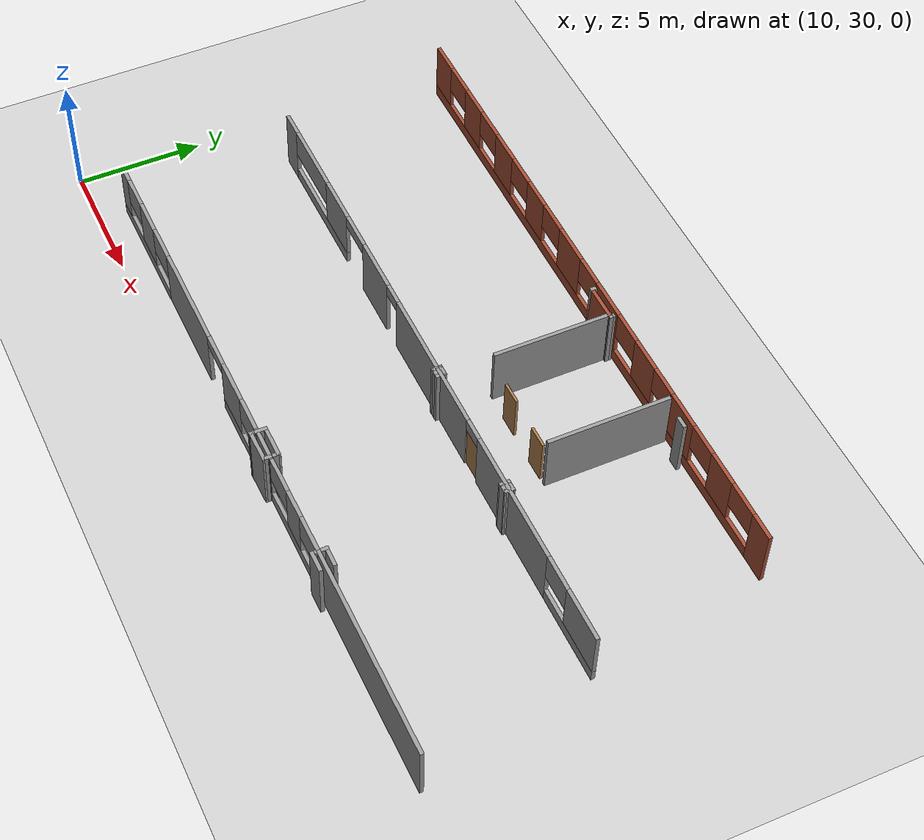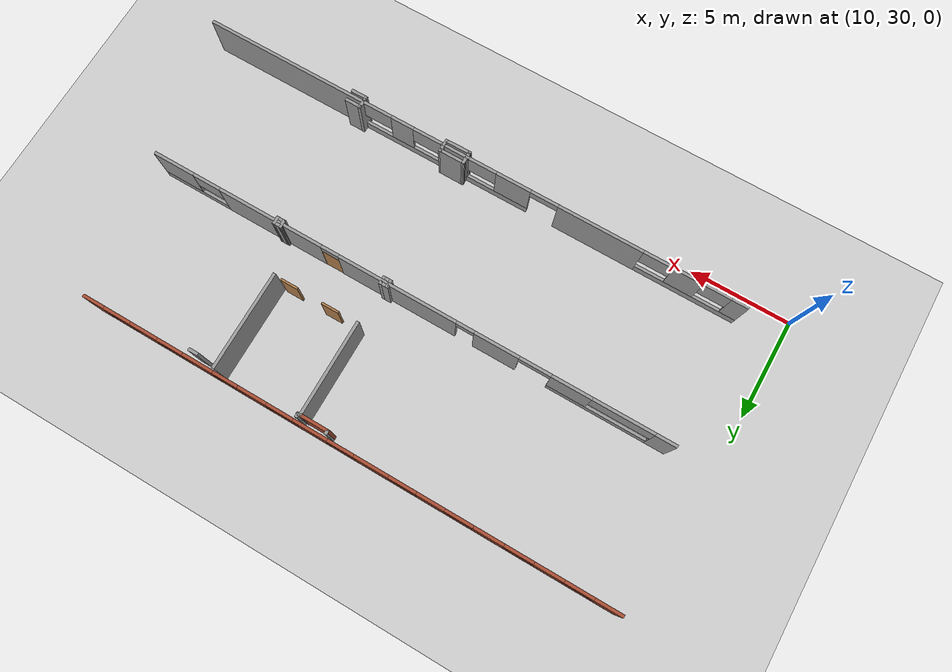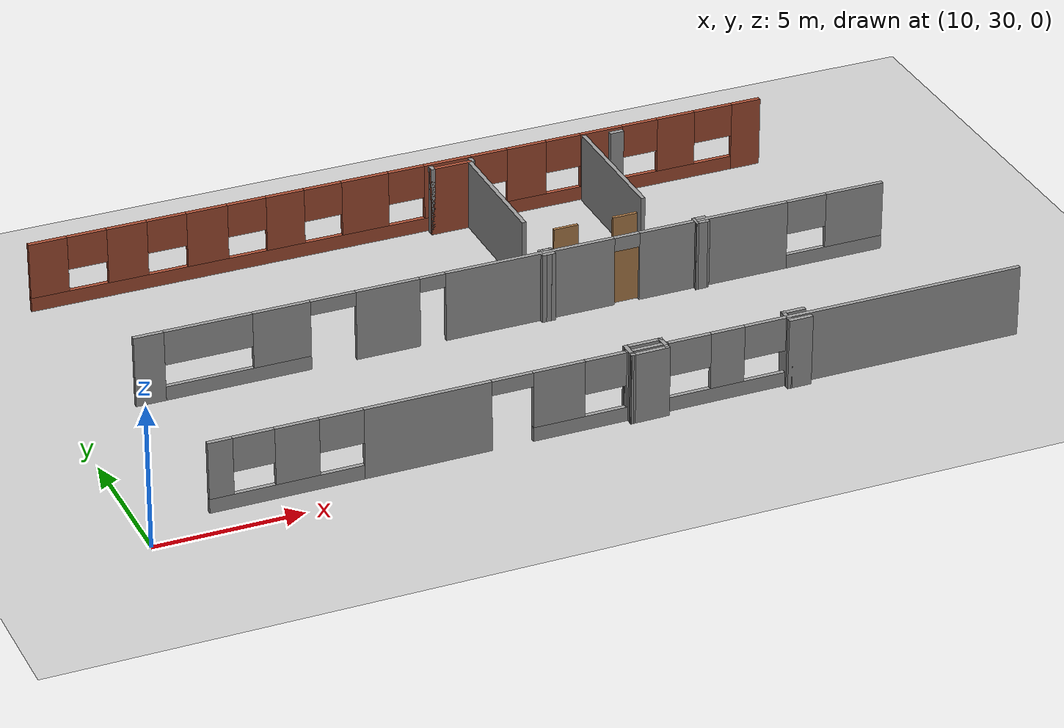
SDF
<sdf version="1.6">
 <world name="default">
  <model name="ground_plane">
   <static>1</static>
   <link name="link">
    <collision name="collision">
     <geometry><plane><normal>0 0 1</normal><size>100 100</size></plane></geometry>
     <surface><friction><ode><mu>100</mu><mu2>50</mu2></ode></friction></surface>
    </collision>
    <visual name="visual">
     <cast_shadows>0</cast_shadows>
     <geometry><plane><normal>0 0 1</normal><size>100 100</size></plane></geometry>
     <material>
      <script><uri>file://media/materials/scripts/gazebo.material</uri><name>Gazebo/Grey</name></script>
     </material>
    </visual>
   </link>
  </model>
  <model name="CVSSP">
   <pose>23.8714 24.094 0 0 -0 0</pose>
   <link name="Wall_0">
    <pose>1.68767 14.035 0 0 -0 0</pose>
    <visual name="Wall_0_Visual_0">
     <pose>-12.7386 0 1.25 0 -0 0</pose>
     <geometry><box><size>1.02282 0.15 2.5</size></box></geometry>
     <material>
      <script><uri>file://media/materials/scripts/gazebo.material</uri><name>Gazebo/Grey</name></script>
      <ambient>0.588235 0.588235 0.588235 1</ambient>
     </material>
    </visual>
    <collision name="Wall_0_Collision_0">
     <geometry><box><size>1.02282 0.15 2.5</size></box></geometry>
     <pose>-12.7386 0 1.25 0 -0 0</pose>
    </collision>
    <visual name="Wall_0_Visual_1">
     <pose>-4.58044 0 1.25 0 -0 0</pose>
     <geometry><box><size>2.22198 0.15 2.5</size></box></geometry>
     <material>
      <script><uri>file://media/materials/scripts/gazebo.material</uri><name>Gazebo/Grey</name></script>
      <ambient>0.588235 0.588235 0.588235 1</ambient>
     </material>
    </visual>
    <collision name="Wall_0_Collision_1">
     <geometry><box><size>2.22198 0.15 2.5</size></box></geometry>
     <pose>-4.58044 0 1.25 0 -0 0</pose>
    </collision>
    <visual name="Wall_0_Visual_2">
     <pose>0.426093 0 1.25 0 -0 0</pose>
     <geometry><box><size>5.99108 0.15 2.5</size></box></geometry>
     <material>
      <script><uri>file://media/materials/scripts/gazebo.material</uri><name>Gazebo/Grey</name></script>
      <ambient>0.588235 0.588235 0.588235 1</ambient>
     </material>
    </visual>
    <collision name="Wall_0_Collision_2">
     <geometry><box><size>5.99108 0.15 2.5</size></box></geometry>
     <pose>0.426093 0 1.25 0 -0 0</pose>
    </collision>
    <visual name="Wall_0_Visual_3">
     <pose>7.01875 0 1.25 0 -0 0</pose>
     <geometry><box><size>5.39422 0.15 2.5</size></box></geometry>
     <material>
      <script><uri>file://media/materials/scripts/gazebo.material</uri><name>Gazebo/Grey</name></script>
      <ambient>0.588235 0.588235 0.588235 1</ambient>
     </material>
    </visual>
    <collision name="Wall_0_Collision_3">
     <geometry><box><size>5.39422 0.15 2.5</size></box></geometry>
     <pose>7.01875 0 1.25 0 -0 0</pose>
    </collision>
    <visual name="Wall_0_Visual_4">
     <pose>-9.74161 0 0.25 0 -0 0</pose>
     <geometry><box><size>4.97113 0.15 0.5</size></box></geometry>
     <material>
      <script><uri>file://media/materials/scripts/gazebo.material</uri><name>Gazebo/Grey</name></script>
      <ambient>0.588235 0.588235 0.588235 1</ambient>
     </material>
    </visual>
    <collision name="Wall_0_Collision_4">
     <geometry><box><size>4.97113 0.15 0.5</size></box></geometry>
     <pose>-9.74161 0 0.25 0 -0 0</pose>
    </collision>
    <visual name="Wall_0_Visual_5">
     <pose>11.4829 0 0.25 0 -0 0</pose>
     <geometry><box><size>3.53415 0.15 0.5</size></box></geometry>
     <material>
      <script><uri>file://media/materials/scripts/gazebo.material</uri><name>Gazebo/Grey</name></script>
      <ambient>0.588235 0.588235 0.588235 1</ambient>
     </material>
    </visual>
    <collision name="Wall_0_Collision_5">
     <geometry><box><size>3.53415 0.15 0.5</size></box></geometry>
     <pose>11.4829 0 0.25 0 -0 0</pose>
    </collision>
    <visual name="Wall_0_Visual_6">
     <pose>-8.24385 0 1.5 0 -0 0</pose>
     <geometry><box><size>1.9756 0.15 2</size></box></geometry>
     <material>
      <script><uri>file://media/materials/scripts/gazebo.material</uri><name>Gazebo/Grey</name></script>
      <ambient>0.588235 0.588235 0.588235 1</ambient>
     </material>
    </visual>
    <collision name="Wall_0_Collision_6">
     <geometry><box><size>1.9756 0.15 2</size></box></geometry>
     <pose>-8.24385 0 1.5 0 -0 0</pose>
    </collision>
    <visual name="Wall_0_Visual_7">
     <pose>-8.24385 0 1.5 0 -0 0</pose>
     <geometry><box><size>1.9756 0.15 2</size></box></geometry>
     <material>
      <script><uri>file://media/materials/scripts/gazebo.material</uri><name>Gazebo/Grey</name></script>
      <ambient>0.588235 0.588235 0.588235 1</ambient>
     </material>
    </visual>
    <collision name="Wall_0_Collision_7">
     <geometry><box><size>1.9756 0.15 2</size></box></geometry>
     <pose>-8.24385 0 1.5 0 -0 0</pose>
    </collision>
    <visual name="Wall_0_Visual_8">
     <pose>12.1924 0 1.5 0 -0 0</pose>
     <geometry><box><size>2.11511 0.15 2</size></box></geometry>
     <material>
      <script><uri>file://media/materials/scripts/gazebo.material</uri><name>Gazebo/Grey</name></script>
      <ambient>0.588235 0.588235 0.588235 1</ambient>
     </material>
    </visual>
    <collision name="Wall_0_Collision_8">
     <geometry><box><size>2.11511 0.15 2</size></box></geometry>
     <pose>12.1924 0 1.5 0 -0 0</pose>
    </collision>
    <visual name="Wall_0_Visual_9">
     <pose>-10.7294 0 1.9 0 -0 0</pose>
     <geometry><box><size>2.99553 0.15 1.2</size></box></geometry>
     <material>
      <script><uri>file://media/materials/scripts/gazebo.material</uri><name>Gazebo/Grey</name></script>
      <ambient>0.588235 0.588235 0.588235 1</ambient>
     </material>
    </visual>
    <collision name="Wall_0_Collision_9">
     <geometry><box><size>2.99553 0.15 1.2</size></box></geometry>
     <pose>-10.7294 0 1.9 0 -0 0</pose>
    </collision>
    <visual name="Wall_0_Visual_10">
     <pose>10.4254 0 1.9 0 -0 0</pose>
     <geometry><box><size>1.41904 0.15 1.2</size></box></geometry>
     <material>
      <script><uri>file://media/materials/scripts/gazebo.material</uri><name>Gazebo/Grey</name></script>
      <ambient>0.588235 0.588235 0.588235 1</ambient>
     </material>
    </visual>
    <collision name="Wall_0_Collision_10">
     <geometry><box><size>1.41904 0.15 1.2</size></box></geometry>
     <pose>10.4254 0 1.9 0 -0 0</pose>
    </collision>
    <visual name="Wall_0_Visual_11">
     <pose>-3.01945 0 2.25 0 -0 0</pose>
     <geometry><box><size>0.9 0.15 0.5</size></box></geometry>
     <material>
      <script><uri>file://media/materials/scripts/gazebo.material</uri><name>Gazebo/Grey</name></script>
      <ambient>0.588235 0.588235 0.588235 1</ambient>
     </material>
    </visual>
    <collision name="Wall_0_Collision_11">
     <geometry><box><size>0.9 0.15 0.5</size></box></geometry>
     <pose>-3.01945 0 2.25 0 -0 0</pose>
    </collision>
    <visual name="Wall_0_Visual_12">
     <pose>3.87163 0 2.25 0 -0 0</pose>
     <geometry><box><size>0.9 0.15 0.5</size></box></geometry>
     <material>
      <script><uri>file://media/materials/scripts/gazebo.material</uri><name>Gazebo/Grey</name></script>
      <ambient>0.588235 0.588235 0.588235 1</ambient>
     </material>
    </visual>
    <collision name="Wall_0_Collision_12">
     <geometry><box><size>0.9 0.15 0.5</size></box></geometry>
     <pose>3.87163 0 2.25 0 -0 0</pose>
    </collision>
    <visual name="Wall_0_Visual_13">
     <pose>-6.47374 0 2.25 0 -0 0</pose>
     <geometry><box><size>1.56462 0.15 0.5</size></box></geometry>
     <material>
      <script><uri>file://media/materials/scripts/gazebo.material</uri><name>Gazebo/Grey</name></script>
      <ambient>0.588235 0.588235 0.588235 1</ambient>
     </material>
    </visual>
    <collision name="Wall_0_Collision_13">
     <geometry><box><size>1.56462 0.15 0.5</size></box></geometry>
     <pose>-6.47374 0 2.25 0 -0 0</pose>
    </collision>
    <visual name="Wall_0_Visual_14">
     <pose>-6.47374 0 2.25 0 -0 0</pose>
     <geometry><box><size>1.56462 0.15 0.5</size></box></geometry>
     <material>
      <script><uri>file://media/materials/scripts/gazebo.material</uri><name>Gazebo/Grey</name></script>
      <ambient>0.588235 0.588235 0.588235 1</ambient>
     </material>
    </visual>
    <collision name="Wall_0_Collision_14">
     <geometry><box><size>1.56462 0.15 0.5</size></box></geometry>
     <pose>-6.47374 0 2.25 0 -0 0</pose>
    </collision>
   </link>
   <link name="Wall_19">
    <pose>2.41083 7.10891 0 0 -0 3.14159</pose>
    <visual name="Wall_19_Visual_0">
     <pose>-9.80896 0 1.25 0 -0 0</pose>
     <geometry><box><size>8.38208 0.15 2.5</size></box></geometry>
     <material>
      <script><uri>file://media/materials/scripts/gazebo.material</uri><name>Gazebo/Grey</name></script>
      <ambient>0.588235 0.588235 0.588235 1</ambient>
     </material>
    </visual>
    <collision name="Wall_19_Collision_0">
     <geometry><box><size>8.38208 0.15 2.5</size></box></geometry>
     <pose>-9.80896 0 1.25 0 -0 0</pose>
    </collision>
    <visual name="Wall_19_Visual_1">
     <pose>6.72902 0 1.25 0 -0 0</pose>
     <geometry><box><size>4.28675 0.15 2.5</size></box></geometry>
     <material>
      <script><uri>file://media/materials/scripts/gazebo.material</uri><name>Gazebo/Grey</name></script>
      <ambient>0.588235 0.588235 0.588235 1</ambient>
     </material>
    </visual>
    <collision name="Wall_19_Collision_1">
     <geometry><box><size>4.28675 0.15 2.5</size></box></geometry>
     <pose>6.72902 0 1.25 0 -0 0</pose>
    </collision>
    <visual name="Wall_19_Visual_2">
     <pose>-1.21771 0 0.25 0 -0 0</pose>
     <geometry><box><size>8.80043 0.15 0.5</size></box></geometry>
     <material>
      <script><uri>file://media/materials/scripts/gazebo.material</uri><name>Gazebo/Grey</name></script>
      <ambient>0.588235 0.588235 0.588235 1</ambient>
     </material>
    </visual>
    <collision name="Wall_19_Collision_2">
     <geometry><box><size>8.80043 0.15 0.5</size></box></geometry>
     <pose>-1.21771 0 0.25 0 -0 0</pose>
    </collision>
    <visual name="Wall_19_Visual_3">
     <pose>11.4362 0 0.25 0 -0 0</pose>
     <geometry><box><size>5.1276 0.15 0.5</size></box></geometry>
     <material>
      <script><uri>file://media/materials/scripts/gazebo.material</uri><name>Gazebo/Grey</name></script>
      <ambient>0.588235 0.588235 0.588235 1</ambient>
     </material>
    </visual>
    <collision name="Wall_19_Collision_3">
     <geometry><box><size>5.1276 0.15 0.5</size></box></geometry>
     <pose>11.4362 0 0.25 0 -0 0</pose>
    </collision>
    <visual name="Wall_19_Visual_4">
     <pose>-3.53944 0 1.5 0 -0 0</pose>
     <geometry><box><size>1.17771 0.15 2</size></box></geometry>
     <material>
      <script><uri>file://media/materials/scripts/gazebo.material</uri><name>Gazebo/Grey</name></script>
      <ambient>0.588235 0.588235 0.588235 1</ambient>
     </material>
    </visual>
    <collision name="Wall_19_Collision_4">
     <geometry><box><size>1.17771 0.15 2</size></box></geometry>
     <pose>-3.53944 0 1.5 0 -0 0</pose>
    </collision>
    <visual name="Wall_19_Visual_5">
     <pose>-0.741003 0 1.5 0 -0 0</pose>
     <geometry><box><size>1.46268 0.15 2</size></box></geometry>
     <material>
      <script><uri>file://media/materials/scripts/gazebo.material</uri><name>Gazebo/Grey</name></script>
      <ambient>0.588235 0.588235 0.588235 1</ambient>
     </material>
    </visual>
    <collision name="Wall_19_Collision_5">
     <geometry><box><size>1.46268 0.15 2</size></box></geometry>
     <pose>-0.741003 0 1.5 0 -0 0</pose>
    </collision>
    <visual name="Wall_19_Visual_6">
     <pose>2.29704 0 1.5 0 -0 0</pose>
     <geometry><box><size>1.77092 0.15 2</size></box></geometry>
     <material>
      <script><uri>file://media/materials/scripts/gazebo.material</uri><name>Gazebo/Grey</name></script>
      <ambient>0.588235 0.588235 0.588235 1</ambient>
     </material>
    </visual>
    <collision name="Wall_19_Collision_6">
     <geometry><box><size>1.77092 0.15 2</size></box></geometry>
     <pose>2.29704 0 1.5 0 -0 0</pose>
    </collision>
    <visual name="Wall_19_Visual_7">
     <pose>2.29704 0 1.5 0 -0 0</pose>
     <geometry><box><size>1.77092 0.15 2</size></box></geometry>
     <material>
      <script><uri>file://media/materials/scripts/gazebo.material</uri><name>Gazebo/Grey</name></script>
      <ambient>0.588235 0.588235 0.588235 1</ambient>
     </material>
    </visual>
    <collision name="Wall_19_Collision_7">
     <geometry><box><size>1.77092 0.15 2</size></box></geometry>
     <pose>2.29704 0 1.5 0 -0 0</pose>
    </collision>
    <visual name="Wall_19_Visual_8">
     <pose>11.0786 0 1.5 0 -0 0</pose>
     <geometry><box><size>1.46509 0.15 2</size></box></geometry>
     <material>
      <script><uri>file://media/materials/scripts/gazebo.material</uri><name>Gazebo/Grey</name></script>
      <ambient>0.588235 0.588235 0.588235 1</ambient>
     </material>
    </visual>
    <collision name="Wall_19_Collision_8">
     <geometry><box><size>1.46509 0.15 2</size></box></geometry>
     <pose>11.0786 0 1.5 0 -0 0</pose>
    </collision>
    <visual name="Wall_19_Visual_9">
     <pose>13.5916 0 1.5 0 -0 0</pose>
     <geometry><box><size>0.816793 0.15 2</size></box></geometry>
     <material>
      <script><uri>file://media/materials/scripts/gazebo.material</uri><name>Gazebo/Grey</name></script>
      <ambient>0.588235 0.588235 0.588235 1</ambient>
     </material>
    </visual>
    <collision name="Wall_19_Collision_9">
     <geometry><box><size>0.816793 0.15 2</size></box></geometry>
     <pose>13.5916 0 1.5 0 -0 0</pose>
    </collision>
    <visual name="Wall_19_Visual_10">
     <pose>-4.87311 0 1.9 0 -0 0</pose>
     <geometry><box><size>1.48963 0.15 1.2</size></box></geometry>
     <material>
      <script><uri>file://media/materials/scripts/gazebo.material</uri><name>Gazebo/Grey</name></script>
      <ambient>0.588235 0.588235 0.588235 1</ambient>
     </material>
    </visual>
    <collision name="Wall_19_Collision_10">
     <geometry><box><size>1.48963 0.15 1.2</size></box></geometry>
     <pose>-4.87311 0 1.9 0 -0 0</pose>
    </collision>
    <visual name="Wall_19_Visual_11">
     <pose>9.60921 0 1.9 0 -0 0</pose>
     <geometry><box><size>1.47362 0.15 1.2</size></box></geometry>
     <material>
      <script><uri>file://media/materials/scripts/gazebo.material</uri><name>Gazebo/Grey</name></script>
      <ambient>0.588235 0.588235 0.588235 1</ambient>
     </material>
    </visual>
    <collision name="Wall_19_Collision_11">
     <geometry><box><size>1.47362 0.15 1.2</size></box></geometry>
     <pose>9.60921 0 1.9 0 -0 0</pose>
    </collision>
    <visual name="Wall_19_Visual_12">
     <pose>-2.21146 0 1.9 0 -0 0</pose>
     <geometry><box><size>1.47823 0.15 1.2</size></box></geometry>
     <material>
      <script><uri>file://media/materials/scripts/gazebo.material</uri><name>Gazebo/Grey</name></script>
      <ambient>0.588235 0.588235 0.588235 1</ambient>
     </material>
    </visual>
    <collision name="Wall_19_Collision_12">
     <geometry><box><size>1.47823 0.15 1.2</size></box></geometry>
     <pose>-2.21146 0 1.9 0 -0 0</pose>
    </collision>
    <visual name="Wall_19_Visual_13">
     <pose>0.700959 0 1.9 0 -0 0</pose>
     <geometry><box><size>1.42124 0.15 1.2</size></box></geometry>
     <material>
      <script><uri>file://media/materials/scripts/gazebo.material</uri><name>Gazebo/Grey</name></script>
      <ambient>0.588235 0.588235 0.588235 1</ambient>
     </material>
    </visual>
    <collision name="Wall_19_Collision_13">
     <geometry><box><size>1.42124 0.15 1.2</size></box></geometry>
     <pose>0.700959 0 1.9 0 -0 0</pose>
    </collision>
    <visual name="Wall_19_Visual_14">
     <pose>12.4972 0 1.9 0 -0 0</pose>
     <geometry><box><size>1.3721 0.15 1.2</size></box></geometry>
     <material>
      <script><uri>file://media/materials/scripts/gazebo.material</uri><name>Gazebo/Grey</name></script>
      <ambient>0.588235 0.588235 0.588235 1</ambient>
     </material>
    </visual>
    <collision name="Wall_19_Collision_14">
     <geometry><box><size>1.3721 0.15 1.2</size></box></geometry>
     <pose>12.4972 0 1.9 0 -0 0</pose>
    </collision>
    <visual name="Wall_19_Visual_15">
     <pose>3.88408 0 2.25 0 -0 0</pose>
     <geometry><box><size>1.40314 0.15 0.5</size></box></geometry>
     <material>
      <script><uri>file://media/materials/scripts/gazebo.material</uri><name>Gazebo/Grey</name></script>
      <ambient>0.588235 0.588235 0.588235 1</ambient>
     </material>
    </visual>
    <collision name="Wall_19_Collision_15">
     <geometry><box><size>1.40314 0.15 0.5</size></box></geometry>
     <pose>3.88408 0 2.25 0 -0 0</pose>
    </collision>
    <visual name="Wall_19_Visual_16">
     <pose>3.88408 0 2.25 0 -0 0</pose>
     <geometry><box><size>1.40314 0.15 0.5</size></box></geometry>
     <material>
      <script><uri>file://media/materials/scripts/gazebo.material</uri><name>Gazebo/Grey</name></script>
      <ambient>0.588235 0.588235 0.588235 1</ambient>
     </material>
    </visual>
    <collision name="Wall_19_Collision_16">
     <geometry><box><size>1.40314 0.15 0.5</size></box></geometry>
     <pose>3.88408 0 2.25 0 -0 0</pose>
    </collision>
   </link>
   <link name="Wall_301">
    <pose>0.541411 21.1476 0 0 -0 3.14159</pose>
    <visual name="Wall_301_Visual_0">
     <pose>-12.7063 0 1.25 0 -0 0</pose>
     <geometry><box><size>1.08735 0.15 2.5</size></box></geometry>
     <material>
      <script><uri>file://media/materials/scripts/gazebo.material</uri><name>Gazebo/Bricks</name></script>
      <ambient>1 1 1 1</ambient>
     </material>
    </visual>
    <collision name="Wall_301_Collision_0">
     <geometry><box><size>1.08735 0.15 2.5</size></box></geometry>
     <pose>-12.7063 0 1.25 0 -0 0</pose>
    </collision>
    <visual name="Wall_301_Visual_1">
     <pose>0.543674 0 0.25 0 -0 0</pose>
     <geometry><box><size>25.4127 0.15 0.5</size></box></geometry>
     <material>
      <script><uri>file://media/materials/scripts/gazebo.material</uri><name>Gazebo/Bricks</name></script>
      <ambient>1 1 1 1</ambient>
     </material>
    </visual>
    <collision name="Wall_301_Collision_1">
     <geometry><box><size>25.4127 0.15 0.5</size></box></geometry>
     <pose>0.543674 0 0.25 0 -0 0</pose>
    </collision>
    <visual name="Wall_301_Visual_2">
     <pose>-10.054 0 1.5 0 -0 0</pose>
     <geometry><box><size>1.40457 0.15 2</size></box></geometry>
     <material>
      <script><uri>file://media/materials/scripts/gazebo.material</uri><name>Gazebo/Bricks</name></script>
      <ambient>1 1 1 1</ambient>
     </material>
    </visual>
    <collision name="Wall_301_Collision_2">
     <geometry><box><size>1.40457 0.15 2</size></box></geometry>
     <pose>-10.054 0 1.5 0 -0 0</pose>
    </collision>
    <visual name="Wall_301_Visual_3">
     <pose>-7.26 0 1.5 0 -0 0</pose>
     <geometry><box><size>1.56325 0.15 2</size></box></geometry>
     <material>
      <script><uri>file://media/materials/scripts/gazebo.material</uri><name>Gazebo/Bricks</name></script>
      <ambient>1 1 1 1</ambient>
     </material>
    </visual>
    <collision name="Wall_301_Collision_3">
     <geometry><box><size>1.56325 0.15 2</size></box></geometry>
     <pose>-7.26 0 1.5 0 -0 0</pose>
    </collision>
    <visual name="Wall_301_Visual_4">
     <pose>-4.48871 0 1.5 0 -0 0</pose>
     <geometry><box><size>1.43857 0.15 2</size></box></geometry>
     <material>
      <script><uri>file://media/materials/scripts/gazebo.material</uri><name>Gazebo/Bricks</name></script>
      <ambient>1 1 1 1</ambient>
     </material>
    </visual>
    <collision name="Wall_301_Collision_4">
     <geometry><box><size>1.43857 0.15 2</size></box></geometry>
     <pose>-4.48871 0 1.5 0 -0 0</pose>
    </collision>
    <visual name="Wall_301_Visual_5">
     <pose>-1.57856 0 1.5 0 -0 0</pose>
     <geometry><box><size>1.70493 0.15 2</size></box></geometry>
     <material>
      <script><uri>file://media/materials/scripts/gazebo.material</uri><name>Gazebo/Bricks</name></script>
      <ambient>1 1 1 1</ambient>
     </material>
    </visual>
    <collision name="Wall_301_Collision_5">
     <geometry><box><size>1.70493 0.15 2</size></box></geometry>
     <pose>-1.57856 0 1.5 0 -0 0</pose>
    </collision>
    <visual name="Wall_301_Visual_6">
     <pose>1.41376 0 1.5 0 -0 0</pose>
     <geometry><box><size>1.68226 0.15 2</size></box></geometry>
     <material>
      <script><uri>file://media/materials/scripts/gazebo.material</uri><name>Gazebo/Bricks</name></script>
      <ambient>1 1 1 1</ambient>
     </material>
    </visual>
    <collision name="Wall_301_Collision_6">
     <geometry><box><size>1.68226 0.15 2</size></box></geometry>
     <pose>1.41376 0 1.5 0 -0 0</pose>
    </collision>
    <visual name="Wall_301_Visual_7">
     <pose>4.28139 0 1.5 0 -0 0</pose>
     <geometry><box><size>1.35356 0.15 2</size></box></geometry>
     <material>
      <script><uri>file://media/materials/scripts/gazebo.material</uri><name>Gazebo/Bricks</name></script>
      <ambient>1 1 1 1</ambient>
     </material>
    </visual>
    <collision name="Wall_301_Collision_7">
     <geometry><box><size>1.35356 0.15 2</size></box></geometry>
     <pose>4.28139 0 1.5 0 -0 0</pose>
    </collision>
    <visual name="Wall_301_Visual_8">
     <pose>7.04557 0 1.5 0 -0 0</pose>
     <geometry><box><size>1.44133 0.15 2</size></box></geometry>
     <material>
      <script><uri>file://media/materials/scripts/gazebo.material</uri><name>Gazebo/Bricks</name></script>
      <ambient>1 1 1 1</ambient>
     </material>
    </visual>
    <collision name="Wall_301_Collision_8">
     <geometry><box><size>1.44133 0.15 2</size></box></geometry>
     <pose>7.04557 0 1.5 0 -0 0</pose>
    </collision>
    <visual name="Wall_301_Visual_9">
     <pose>9.84934 0 1.5 0 -0 0</pose>
     <geometry><box><size>1.39875 0.15 2</size></box></geometry>
     <material>
      <script><uri>file://media/materials/scripts/gazebo.material</uri><name>Gazebo/Bricks</name></script>
      <ambient>1 1 1 1</ambient>
     </material>
    </visual>
    <collision name="Wall_301_Collision_9">
     <geometry><box><size>1.39875 0.15 2</size></box></geometry>
     <pose>9.84934 0 1.5 0 -0 0</pose>
    </collision>
    <visual name="Wall_301_Visual_10">
     <pose>12.5827 0 1.5 0 -0 0</pose>
     <geometry><box><size>1.33456 0.15 2</size></box></geometry>
     <material>
      <script><uri>file://media/materials/scripts/gazebo.material</uri><name>Gazebo/Bricks</name></script>
      <ambient>1 1 1 1</ambient>
     </material>
    </visual>
    <collision name="Wall_301_Collision_10">
     <geometry><box><size>1.33456 0.15 2</size></box></geometry>
     <pose>12.5827 0 1.5 0 -0 0</pose>
    </collision>
    <visual name="Wall_301_Visual_11">
     <pose>-11.4595 0 1.9 0 -0 0</pose>
     <geometry><box><size>1.4064 0.15 1.2</size></box></geometry>
     <material>
      <script><uri>file://media/materials/scripts/gazebo.material</uri><name>Gazebo/Bricks</name></script>
      <ambient>1 1 1 1</ambient>
     </material>
    </visual>
    <collision name="Wall_301_Collision_11">
     <geometry><box><size>1.4064 0.15 1.2</size></box></geometry>
     <pose>-11.4595 0 1.9 0 -0 0</pose>
    </collision>
    <visual name="Wall_301_Visual_12">
     <pose>-8.69666 0 1.9 0 -0 0</pose>
     <geometry><box><size>1.31005 0.15 1.2</size></box></geometry>
     <material>
      <script><uri>file://media/materials/scripts/gazebo.material</uri><name>Gazebo/Bricks</name></script>
      <ambient>1 1 1 1</ambient>
     </material>
    </visual>
    <collision name="Wall_301_Collision_12">
     <geometry><box><size>1.31005 0.15 1.2</size></box></geometry>
     <pose>-8.69666 0 1.9 0 -0 0</pose>
    </collision>
    <visual name="Wall_301_Visual_13">
     <pose>-5.84319 0 1.9 0 -0 0</pose>
     <geometry><box><size>1.27038 0.15 1.2</size></box></geometry>
     <material>
      <script><uri>file://media/materials/scripts/gazebo.material</uri><name>Gazebo/Bricks</name></script>
      <ambient>1 1 1 1</ambient>
     </material>
    </visual>
    <collision name="Wall_301_Collision_13">
     <geometry><box><size>1.27038 0.15 1.2</size></box></geometry>
     <pose>-5.84319 0 1.9 0 -0 0</pose>
    </collision>
    <visual name="Wall_301_Visual_14">
     <pose>-3.10023 0 1.9 0 -0 0</pose>
     <geometry><box><size>1.33839 0.15 1.2</size></box></geometry>
     <material>
      <script><uri>file://media/materials/scripts/gazebo.material</uri><name>Gazebo/Bricks</name></script>
      <ambient>1 1 1 1</ambient>
     </material>
    </visual>
    <collision name="Wall_301_Collision_14">
     <geometry><box><size>1.33839 0.15 1.2</size></box></geometry>
     <pose>-3.10023 0 1.9 0 -0 0</pose>
    </collision>
    <visual name="Wall_301_Visual_15">
     <pose>-0.076737 0 1.9 0 -0 0</pose>
     <geometry><box><size>1.29872 0.15 1.2</size></box></geometry>
     <material>
      <script><uri>file://media/materials/scripts/gazebo.material</uri><name>Gazebo/Bricks</name></script>
      <ambient>1 1 1 1</ambient>
     </material>
    </visual>
    <collision name="Wall_301_Collision_15">
     <geometry><box><size>1.29872 0.15 1.2</size></box></geometry>
     <pose>-0.076737 0 1.9 0 -0 0</pose>
    </collision>
    <visual name="Wall_301_Visual_16">
     <pose>2.92975 0 1.9 0 -0 0</pose>
     <geometry><box><size>1.34973 0.15 1.2</size></box></geometry>
     <material>
      <script><uri>file://media/materials/scripts/gazebo.material</uri><name>Gazebo/Bricks</name></script>
      <ambient>1 1 1 1</ambient>
     </material>
    </visual>
    <collision name="Wall_301_Collision_16">
     <geometry><box><size>1.34973 0.15 1.2</size></box></geometry>
     <pose>2.92975 0 1.9 0 -0 0</pose>
    </collision>
    <visual name="Wall_301_Visual_17">
     <pose>5.64154 0 1.9 0 -0 0</pose>
     <geometry><box><size>1.36673 0.15 1.2</size></box></geometry>
     <material>
      <script><uri>file://media/materials/scripts/gazebo.material</uri><name>Gazebo/Bricks</name></script>
      <ambient>1 1 1 1</ambient>
     </material>
    </visual>
    <collision name="Wall_301_Collision_17">
     <geometry><box><size>1.36673 0.15 1.2</size></box></geometry>
     <pose>5.64154 0 1.9 0 -0 0</pose>
    </collision>
    <visual name="Wall_301_Visual_18">
     <pose>8.4581 0 1.9 0 -0 0</pose>
     <geometry><box><size>1.38373 0.15 1.2</size></box></geometry>
     <material>
      <script><uri>file://media/materials/scripts/gazebo.material</uri><name>Gazebo/Bricks</name></script>
      <ambient>1 1 1 1</ambient>
     </material>
    </visual>
    <collision name="Wall_301_Collision_18">
     <geometry><box><size>1.38373 0.15 1.2</size></box></geometry>
     <pose>8.4581 0 1.9 0 -0 0</pose>
    </collision>
    <visual name="Wall_301_Visual_19">
     <pose>11.2321 0 1.9 0 -0 0</pose>
     <geometry><box><size>1.36673 0.15 1.2</size></box></geometry>
     <material>
      <script><uri>file://media/materials/scripts/gazebo.material</uri><name>Gazebo/Bricks</name></script>
      <ambient>1 1 1 1</ambient>
     </material>
    </visual>
    <collision name="Wall_301_Collision_19">
     <geometry><box><size>1.36673 0.15 1.2</size></box></geometry>
     <pose>11.2321 0 1.9 0 -0 0</pose>
    </collision>
   </link>
   <link name="Wall_32">
    <collision name="Wall_32_Collision">
     <geometry><box><size>0.5 0.15 2.5</size></box></geometry>
     <pose>0 0 1.25 0 -0 0</pose>
    </collision>
    <visual name="Wall_32_Visual">
     <pose>0 0 1.25 0 -0 0</pose>
     <geometry><box><size>0.5 0.15 2.5</size></box></geometry>
     <material>
      <script><uri>file://media/materials/scripts/gazebo.material</uri><name>Gazebo/Grey</name></script>
      <ambient>1 1 1 1</ambient>
     </material>
    </visual>
    <pose>2.55582 7.23766 0 0 -0 1.5708</pose>
   </link>
   <link name="Wall_322">
    <collision name="Wall_322_Collision">
     <geometry><box><size>4.75 0.15 2.5</size></box></geometry>
     <pose>0 0 1.25 0 -0 0</pose>
    </collision>
    <visual name="Wall_322_Visual">
     <pose>0 0 1.25 0 -0 0</pose>
     <geometry><box><size>4.75 0.15 2.5</size></box></geometry>
     <material>
      <script><uri>file://media/materials/scripts/gazebo.material</uri><name>Gazebo/Grey</name></script>
      <ambient>0.588235 0.588235 0.588235 1</ambient>
     </material>
    </visual>
    <pose>2.8067 18.5154 0 0 -0 1.5708</pose>
   </link>
   <link name="Wall_323">
    <collision name="Wall_323_Collision">
     <geometry><box><size>1.5 0.15 2.5</size></box></geometry>
     <pose>0 0 1.25 0 -0 0</pose>
    </collision>
    <visual name="Wall_323_Visual">
     <pose>0 0 1.25 0 -0 0</pose>
     <geometry><box><size>1.5 0.15 2.5</size></box></geometry>
     <material>
      <script><uri>file://media/materials/scripts/gazebo.material</uri><name>Gazebo/Bricks</name></script>
      <ambient>1 1 1 1</ambient>
     </material>
    </visual>
    <pose>2.1317 20.8154 0 0 -0 3.14159</pose>
   </link>
   <link name="Wall_324">
    <collision name="Wall_324_Collision">
     <geometry><box><size>0.25 0.15 2.5</size></box></geometry>
     <pose>0 0 1.25 0 -0 0</pose>
    </collision>
    <visual name="Wall_324_Visual">
     <pose>0 0 1.25 0 -0 0</pose>
     <geometry><box><size>0.25 0.15 2.5</size></box></geometry>
     <material>
      <script><uri>file://media/materials/scripts/gazebo.material</uri><name>Gazebo/Grey</name></script>
      <ambient>1 1 1 1</ambient>
     </material>
    </visual>
    <pose>1.4567 20.8654 0 0 -0 1.5708</pose>
   </link>
   <link name="Wall_33">
    <collision name="Wall_33_Collision">
     <geometry><box><size>1.35002 0.15 2.5</size></box></geometry>
     <pose>0 0 1.25 0 -0 0</pose>
    </collision>
    <visual name="Wall_33_Visual">
     <pose>0 0 1.25 0 -0 0</pose>
     <geometry><box><size>1.35002 0.15 2.5</size></box></geometry>
     <material>
      <script><uri>file://media/materials/scripts/gazebo.material</uri><name>Gazebo/Grey</name></script>
      <ambient>1 1 1 1</ambient>
     </material>
    </visual>
    <pose>3.15583 7.41134 0 0 0 -0.002197</pose>
   </link>
   <link name="Wall_332">
    <collision name="Wall_332_Collision">
     <geometry><box><size>0.280384 0.15 2.5</size></box></geometry>
     <pose>0 0 1.25 0 -0 0</pose>
    </collision>
    <visual name="Wall_332_Visual">
     <pose>0 0 1.25 0 -0 0</pose>
     <geometry><box><size>0.280384 0.15 2.5</size></box></geometry>
     <material>
      <script><uri>file://media/materials/scripts/gazebo.material</uri><name>Gazebo/Grey</name></script>
      <ambient>1 1 1 1</ambient>
     </material>
    </visual>
    <pose>2.8517 20.8304 0 0 0 -0.076772</pose>
   </link>
   <link name="Wall_333">
    <collision name="Wall_333_Collision">
     <geometry><box><size>0.25 0.15 2.5</size></box></geometry>
     <pose>0 0 1.25 0 -0 0</pose>
    </collision>
    <visual name="Wall_333_Visual">
     <pose>0 0 1.25 0 -0 0</pose>
     <geometry><box><size>0.25 0.15 2.5</size></box></geometry>
     <material>
      <script><uri>file://media/materials/scripts/gazebo.material</uri><name>Gazebo/Grey</name></script>
      <ambient>1 1 1 1</ambient>
     </material>
    </visual>
    <pose>2.9067 20.8754 0 0 -0 1.5708</pose>
   </link>
   <link name="Wall_335">
    <collision name="Wall_335_Collision">
     <geometry><box><size>4.88455 0.15 2.5</size></box></geometry>
     <pose>0 0 1.25 0 -0 0</pose>
    </collision>
    <visual name="Wall_335_Visual">
     <pose>0 0 1.25 0 -0 0</pose>
     <geometry><box><size>4.88455 0.15 2.5</size></box></geometry>
     <material>
      <script><uri>file://media/materials/scripts/gazebo.material</uri><name>Gazebo/Grey</name></script>
      <ambient>0.588235 0.588235 0.588235 1</ambient>
     </material>
    </visual>
    <pose>7.10695 18.568 0 0 -0 1.5708</pose>
   </link>
   <link name="Wall_34">
    <collision name="Wall_34_Collision">
     <geometry><box><size>0.477081 0.15 2.5</size></box></geometry>
     <pose>0 0 1.25 0 -0 0</pose>
    </collision>
    <visual name="Wall_34_Visual">
     <pose>0 0 1.25 0 -0 0</pose>
     <geometry><box><size>0.477081 0.15 2.5</size></box></geometry>
     <material>
      <script><uri>file://media/materials/scripts/gazebo.material</uri><name>Gazebo/Grey</name></script>
      <ambient>1 1 1 1</ambient>
     </material>
    </visual>
    <pose>3.75756 7.24649 0 0 0 -1.56021</pose>
   </link>
   <link name="Wall_35">
    <collision name="Wall_35_Collision">
     <geometry><box><size>0.362174 0.15 2.5</size></box></geometry>
     <pose>0 0 1.25 0 -0 0</pose>
    </collision>
    <visual name="Wall_35_Visual">
     <pose>0 0 1.25 0 -0 0</pose>
     <geometry><box><size>0.362174 0.15 2.5</size></box></geometry>
     <material>
      <script><uri>file://media/materials/scripts/gazebo.material</uri><name>Gazebo/Grey</name></script>
      <ambient>1 1 1 1</ambient>
     </material>
    </visual>
    <pose>3.75517 6.99018 0 0 0 -1.6097</pose>
   </link>
   <link name="Wall_36">
    <collision name="Wall_36_Collision">
     <geometry><box><size>1.34683 0.15 2.5</size></box></geometry>
     <pose>0 0 1.25 0 -0 0</pose>
    </collision>
    <visual name="Wall_36_Visual">
     <pose>0 0 1.25 0 -0 0</pose>
     <geometry><box><size>1.34683 0.15 2.5</size></box></geometry>
     <material>
      <script><uri>file://media/materials/scripts/gazebo.material</uri><name>Gazebo/Grey</name></script>
      <ambient>1 1 1 1</ambient>
     </material>
    </visual>
    <pose>3.15268 6.87142 0 0 0 -3.1286</pose>
   </link>
   <link name="Wall_37">
    <collision name="Wall_37_Collision">
     <geometry><box><size>0.15 0.15 2.5</size></box></geometry>
     <pose>0 0 1.25 0 -0 0</pose>
    </collision>
    <visual name="Wall_37_Visual">
     <pose>0 0 1.25 0 -0 0</pose>
     <geometry><box><size>0.15 0.15 2.5</size></box></geometry>
     <material>
      <script><uri>file://media/materials/scripts/gazebo.material</uri><name>Gazebo/Grey</name></script>
      <ambient>1 1 1 1</ambient>
     </material>
    </visual>
    <pose>2.55431 6.86365 0 0 -0 0</pose>
   </link>
   <link name="Wall_38">
    <collision name="Wall_38_Collision">
     <geometry><box><size>0.258168 0.15 2.5</size></box></geometry>
     <pose>0 0 1.25 0 -0 0</pose>
    </collision>
    <visual name="Wall_38_Visual">
     <pose>0 0 1.25 0 -0 0</pose>
     <geometry><box><size>0.258168 0.15 2.5</size></box></geometry>
     <material>
      <script><uri>file://media/materials/scripts/gazebo.material</uri><name>Gazebo/Grey</name></script>
      <ambient>1 1 1 1</ambient>
     </material>
    </visual>
    <pose>2.55648 6.91769 0 0 -0 1.61078</pose>
   </link>
   <link name="Wall_40">
    <collision name="Wall_40_Collision">
     <geometry><box><size>0.82 0.15 2.5</size></box></geometry>
     <pose>0 0 1.25 0 -0 0</pose>
    </collision>
    <visual name="Wall_40_Visual">
     <pose>0 0 1.25 0 -0 0</pose>
     <geometry><box><size>0.82 0.15 2.5</size></box></geometry>
     <material>
      <script><uri>file://media/materials/scripts/gazebo.material</uri><name>Gazebo/Grey</name></script>
      <ambient>1 1 1 1</ambient>
     </material>
    </visual>
    <pose>8.4225 7.39869 0 0 -0 0</pose>
   </link>
   <link name="Wall_42">
    <collision name="Wall_42_Collision">
     <geometry><box><size>0.84 0.15 2.5</size></box></geometry>
     <pose>0 0 1.25 0 -0 0</pose>
    </collision>
    <visual name="Wall_42_Visual">
     <pose>0 0 1.25 0 -0 0</pose>
     <geometry><box><size>0.84 0.15 2.5</size></box></geometry>
     <material>
      <script><uri>file://media/materials/scripts/gazebo.material</uri><name>Gazebo/Grey</name></script>
      <ambient>1 1 1 1</ambient>
     </material>
    </visual>
    <pose>8.4125 6.87868 0 0 -0 3.14159</pose>
   </link>
   <link name="Wall_43">
    <collision name="Wall_43_Collision">
     <geometry><box><size>0.68 0.15 2.5</size></box></geometry>
     <pose>0 0 1.25 0 -0 0</pose>
    </collision>
    <visual name="Wall_43_Visual">
     <pose>0 0 1.25 0 -0 0</pose>
     <geometry><box><size>0.68 0.15 2.5</size></box></geometry>
     <material>
      <script><uri>file://media/materials/scripts/gazebo.material</uri><name>Gazebo/Grey</name></script>
      <ambient>1 1 1 1</ambient>
     </material>
    </visual>
    <pose>8.0675 7.14368 0 0 -0 1.5708</pose>
   </link>
   <link name="Wall_607">
    <collision name="Wall_607_Collision">
     <geometry><box><size>0.487238 0.15 2.5</size></box></geometry>
     <pose>0 0 1.25 0 -0 0</pose>
    </collision>
    <visual name="Wall_607_Visual">
     <pose>0 0 1.25 0 -0 0</pose>
     <geometry><box><size>0.487238 0.15 2.5</size></box></geometry>
     <material>
      <script><uri>file://media/materials/scripts/gazebo.material</uri><name>Gazebo/Grey</name></script>
      <ambient>1 1 1 1</ambient>
     </material>
    </visual>
    <pose>8.24171 14.1532 0 0 -0 0</pose>
   </link>
   <link name="Wall_608">
    <collision name="Wall_608_Collision">
     <geometry><box><size>0.414583 0.15 2.5</size></box></geometry>
     <pose>0 0 1.25 0 -0 0</pose>
    </collision>
    <visual name="Wall_608_Visual">
     <pose>0 0 1.25 0 -0 0</pose>
     <geometry><box><size>0.414583 0.15 2.5</size></box></geometry>
     <material>
      <script><uri>file://media/materials/scripts/gazebo.material</uri><name>Gazebo/Grey</name></script>
      <ambient>1 1 1 1</ambient>
     </material>
    </visual>
    <pose>8.40868 14.021 0 0 0 -1.5833</pose>
   </link>
   <link name="Wall_609">
    <collision name="Wall_609_Collision">
     <geometry><box><size>0.477386 0.15 2.5</size></box></geometry>
     <pose>0 0 1.25 0 -0 0</pose>
    </collision>
    <visual name="Wall_609_Visual">
     <pose>0 0 1.25 0 -0 0</pose>
     <geometry><box><size>0.477386 0.15 2.5</size></box></geometry>
     <material>
      <script><uri>file://media/materials/scripts/gazebo.material</uri><name>Gazebo/Grey</name></script>
      <ambient>1 1 1 1</ambient>
     </material>
    </visual>
    <pose>8.24336 13.8871 0 0 0 -3.13149</pose>
   </link>
   <link name="Wall_610">
    <collision name="Wall_610_Collision">
     <geometry><box><size>0.417827 0.15 2.5</size></box></geometry>
     <pose>0 0 1.25 0 -0 0</pose>
    </collision>
    <visual name="Wall_610_Visual">
     <pose>0 0 1.25 0 -0 0</pose>
     <geometry><box><size>0.417827 0.15 2.5</size></box></geometry>
     <material>
      <script><uri>file://media/materials/scripts/gazebo.material</uri><name>Gazebo/Grey</name></script>
      <ambient>1 1 1 1</ambient>
     </material>
    </visual>
    <pose>8.0764 14.0193 0 0 -0 1.59548</pose>
   </link>
   <link name="Wall_613">
    <collision name="Wall_613_Collision">
     <geometry><box><size>0.485444 0.15 2.5</size></box></geometry>
     <pose>0 0 1.25 0 -0 0</pose>
    </collision>
    <visual name="Wall_613_Visual">
     <pose>0 0 1.25 0 -0 0</pose>
     <geometry><box><size>0.485444 0.15 2.5</size></box></geometry>
     <material>
      <script><uri>file://media/materials/scripts/gazebo.material</uri><name>Gazebo/Grey</name></script>
      <ambient>1 1 1 1</ambient>
     </material>
    </visual>
    <pose>2.69957 14.1578 0 0 -0 0</pose>
   </link>
   <link name="Wall_614">
    <collision name="Wall_614_Collision">
     <geometry><box><size>0.422338 0.15 2.5</size></box></geometry>
     <pose>0 0 1.25 0 -0 0</pose>
    </collision>
    <visual name="Wall_614_Visual">
     <pose>0 0 1.25 0 -0 0</pose>
     <geometry><box><size>0.422338 0.15 2.5</size></box></geometry>
     <material>
      <script><uri>file://media/materials/scripts/gazebo.material</uri><name>Gazebo/Grey</name></script>
      <ambient>1 1 1 1</ambient>
     </material>
    </visual>
    <pose>2.86727 14.0219 0 0 0 -1.5708</pose>
   </link>
   <link name="Wall_615">
    <collision name="Wall_615_Collision">
     <geometry><box><size>0.479662 0.15 2.5</size></box></geometry>
     <pose>0 0 1.25 0 -0 0</pose>
    </collision>
    <visual name="Wall_615_Visual">
     <pose>0 0 1.25 0 -0 0</pose>
     <geometry><box><size>0.479662 0.15 2.5</size></box></geometry>
     <material>
      <script><uri>file://media/materials/scripts/gazebo.material</uri><name>Gazebo/Grey</name></script>
      <ambient>1 1 1 1</ambient>
     </material>
    </visual>
    <pose>2.70247 13.8861 0 0 -0 3.14159</pose>
   </link>
   <link name="Wall_616">
    <collision name="Wall_616_Collision">
     <geometry><box><size>0.416065 0.15 2.5</size></box></geometry>
     <pose>0 0 1.25 0 -0 0</pose>
    </collision>
    <visual name="Wall_616_Visual">
     <pose>0 0 1.25 0 -0 0</pose>
     <geometry><box><size>0.416065 0.15 2.5</size></box></geometry>
     <material>
      <script><uri>file://media/materials/scripts/gazebo.material</uri><name>Gazebo/Grey</name></script>
      <ambient>1 1 1 1</ambient>
     </material>
    </visual>
    <pose>2.53766 14.0191 0 0 -0 1.5708</pose>
   </link>
   <link name="Wall_671">
    <collision name="Wall_671_Collision">
     <geometry><box><size>0.491931 0.15 2.5</size></box></geometry>
     <pose>0 0 1.25 0 -0 0</pose>
    </collision>
    <visual name="Wall_671_Visual">
     <pose>0 0 1.25 0 -0 0</pose>
     <geometry><box><size>0.491931 0.15 2.5</size></box></geometry>
     <material>
      <script><uri>file://media/materials/scripts/gazebo.material</uri><name>Gazebo/Grey</name></script>
      <ambient>1 1 1 1</ambient>
     </material>
    </visual>
    <pose>8.2379 20.825 0 0 -0 0</pose>
   </link>
   <static>1</static>
  </model>
  <model name="basic_ply_door_corrected_clone_clone_clone_clone">
   <link name="link">
    <pose>-0 0 1.00385 0 -0 0</pose>
    <inertial>
     <mass>0.5167</mass>
     <inertia>
      <ixx>0.00086117</ixx>
      <ixy>0</ixy>
      <ixz>0</ixz>
      <iyy>0.00086117</iyy>
      <iyz>0</iyz>
      <izz>0.00086117</izz>
     </inertia>
    </inertial>
    <gravity>0</gravity>
    <visual name="visual">
     <geometry><box><size>0.88 0.1 1.96</size></box></geometry>
     <material>
      <script><uri>file://media/materials/scripts/gazebo.material</uri><name>Gazebo/Wood</name></script>
      <shader type="pixel"><normal_map>__default__</normal_map></shader>
      <ambient>1 1 1 1</ambient>
      <diffuse>1 1 1 1</diffuse>
      <specular>0.2 0.2 0.2 1</specular>
      <emissive>0 0 0 1</emissive>
     </material>
    </visual>
    <collision name="collision">
     <geometry><box><size>0.88 0.1 1.96</size></box></geometry>
     <surface>
      <friction>
       <ode><mu>1</mu><mu2>1</mu2><fdir1>0 0 0</fdir1><slip1>0</slip1><slip2>0</slip2></ode>
       <torsional>
        <coefficient>1</coefficient>
        <patch_radius>0</patch_radius>
        <surface_radius>0.01</surface_radius>
        <use_patch_radius>0</use_patch_radius>
        <ode><slip>0</slip></ode>
       </torsional>
      </friction>
      <bounce><restitution_coefficient>0</restitution_coefficient><threshold>1e+06</threshold></bounce>
      <contact>
       <collide_without_contact>0</collide_without_contact>
       <collide_without_contact_bitmask>1</collide_without_contact_bitmask>
       <collide_bitmask>1</collide_bitmask>
       <ode>
        <soft_cfm>0</soft_cfm>
        <soft_erp>0.2</soft_erp>
        <kp>100000</kp>
        <kd>100</kd>
        <max_vel>100</max_vel>
        <min_depth>0.001</min_depth>
       </ode>
       <bullet>
        <split_impulse>1</split_impulse>
        <split_impulse_penetration_threshold>-0.01</split_impulse_penetration_threshold>
        <soft_cfm>0</soft_cfm>
        <soft_erp>0.2</soft_erp>
        <kp>100000</kp>
        <kd>100</kd>
       </bullet>
      </contact>
     </surface>
    </collision>
   </link>
   <static>1</static>
   <pose>30.3106 40.2244 0.02761 0 -0 0.005419</pose>
  </model>
  <model name="basic_ply_door_corrected_clone_clone_clone_clone_0">
   <link name="link">
    <pose>-0 0 1.00385 0 -0 0</pose>
    <inertial>
     <mass>0.5167</mass>
     <inertia>
      <ixx>0.00086117</ixx>
      <ixy>0</ixy>
      <ixz>0</ixz>
      <iyy>0.00086117</iyy>
      <iyz>0</iyz>
      <izz>0.00086117</izz>
     </inertia>
    </inertial>
    <gravity>0</gravity>
    <visual name="visual">
     <geometry><box><size>0.88 0.1 1.96</size></box></geometry>
     <material>
      <script><uri>file://media/materials/scripts/gazebo.material</uri><name>Gazebo/Wood</name></script>
      <shader type="pixel"><normal_map>__default__</normal_map></shader>
      <ambient>1 1 1 1</ambient>
      <diffuse>1 1 1 1</diffuse>
      <specular>0.2 0.2 0.2 1</specular>
      <emissive>0 0 0 1</emissive>
     </material>
    </visual>
    <collision name="collision">
     <geometry><box><size>0.88 0.1 1.96</size></box></geometry>
     <surface>
      <friction>
       <ode><mu>1</mu><mu2>1</mu2><fdir1>0 0 0</fdir1><slip1>0</slip1><slip2>0</slip2></ode>
       <torsional>
        <coefficient>1</coefficient>
        <patch_radius>0</patch_radius>
        <surface_radius>0.01</surface_radius>
        <use_patch_radius>0</use_patch_radius>
        <ode><slip>0</slip></ode>
       </torsional>
      </friction>
      <bounce><restitution_coefficient>0</restitution_coefficient><threshold>1e+06</threshold></bounce>
      <contact>
       <collide_without_contact>0</collide_without_contact>
       <collide_without_contact_bitmask>1</collide_without_contact_bitmask>
       <collide_bitmask>1</collide_bitmask>
       <ode>
        <soft_cfm>0</soft_cfm>
        <soft_erp>0.2</soft_erp>
        <kp>100000</kp>
        <kd>100</kd>
        <max_vel>100</max_vel>
        <min_depth>0.001</min_depth>
       </ode>
       <bullet>
        <split_impulse>1</split_impulse>
        <split_impulse_penetration_threshold>-0.01</split_impulse_penetration_threshold>
        <soft_cfm>0</soft_cfm>
        <soft_erp>0.2</soft_erp>
        <kp>100000</kp>
        <kd>100</kd>
       </bullet>
      </contact>
     </surface>
    </collision>
   </link>
   <static>1</static>
   <pose>28.1738 40.2412 0.02761 0 -0 0.005419</pose>
  </model>
  <model name="basic_ply_door_corrected_clone_clone_clone_clone_0_clone">
   <link name="link">
    <pose>-0 0 1.00385 0 -0 0</pose>
    <inertial>
     <mass>0.5167</mass>
     <inertia>
      <ixx>0.00086117</ixx>
      <ixy>0</ixy>
      <ixz>0</ixz>
      <iyy>0.00086117</iyy>
      <iyz>0</iyz>
      <izz>0.00086117</izz>
     </inertia>
    </inertial>
    <gravity>0</gravity>
    <visual name="visual">
     <geometry><box><size>0.88 0.1 1.96</size></box></geometry>
     <material>
      <script><uri>file://media/materials/scripts/gazebo.material</uri><name>Gazebo/Wood</name></script>
      <shader type="pixel"><normal_map>__default__</normal_map></shader>
      <ambient>1 1 1 1</ambient>
      <diffuse>1 1 1 1</diffuse>
      <specular>0.2 0.2 0.2 1</specular>
      <emissive>0 0 0 1</emissive>
     </material>
    </visual>
    <collision name="collision">
     <geometry><box><size>0.88 0.1 1.96</size></box></geometry>
     <surface>
      <friction>
       <ode><mu>1</mu><mu2>1</mu2><fdir1>0 0 0</fdir1><slip1>0</slip1><slip2>0</slip2></ode>
       <torsional>
        <coefficient>1</coefficient>
        <patch_radius>0</patch_radius>
        <surface_radius>0.01</surface_radius>
        <use_patch_radius>0</use_patch_radius>
        <ode><slip>0</slip></ode>
       </torsional>
      </friction>
      <bounce><restitution_coefficient>0</restitution_coefficient><threshold>1e+06</threshold></bounce>
      <contact>
       <collide_without_contact>0</collide_without_contact>
       <collide_without_contact_bitmask>1</collide_without_contact_bitmask>
       <collide_bitmask>1</collide_bitmask>
       <ode>
        <soft_cfm>0</soft_cfm>
        <soft_erp>0.2</soft_erp>
        <kp>100000</kp>
        <kd>100</kd>
        <max_vel>100</max_vel>
        <min_depth>0.001</min_depth>
       </ode>
       <bullet>
        <split_impulse>1</split_impulse>
        <split_impulse_penetration_threshold>-0.01</split_impulse_penetration_threshold>
        <soft_cfm>0</soft_cfm>
        <soft_erp>0.2</soft_erp>
        <kp>100000</kp>
        <kd>100</kd>
       </bullet>
      </contact>
     </surface>
    </collision>
   </link>
   <static>1</static>
   <pose>29.4239 38.1532 0.02761 0 -0 0.005419</pose>
  </model>
 </world>
</sdf>
